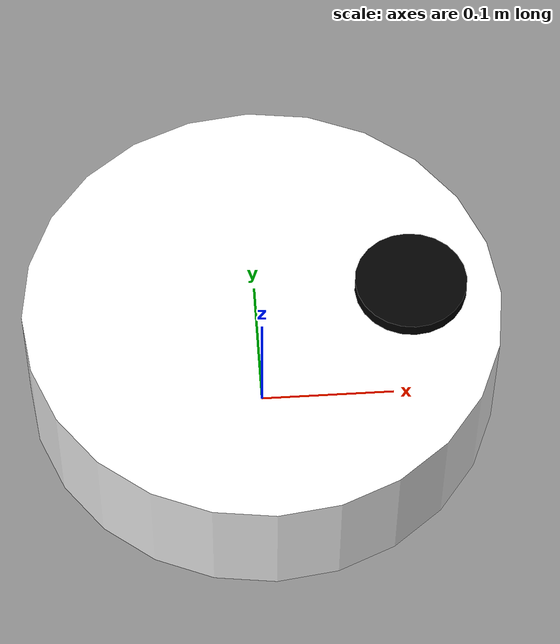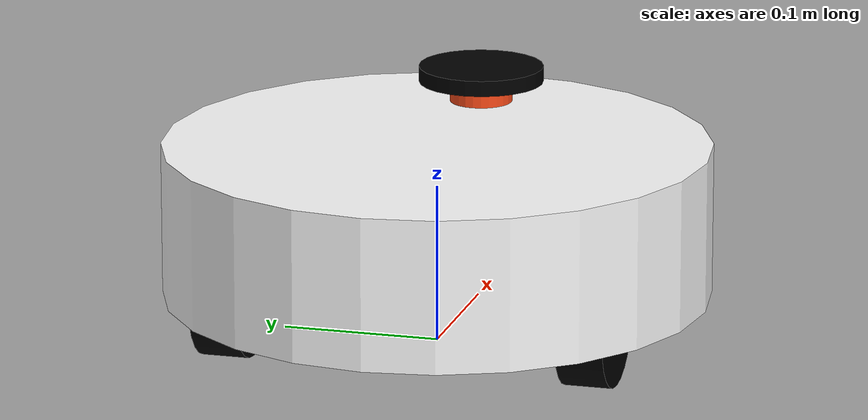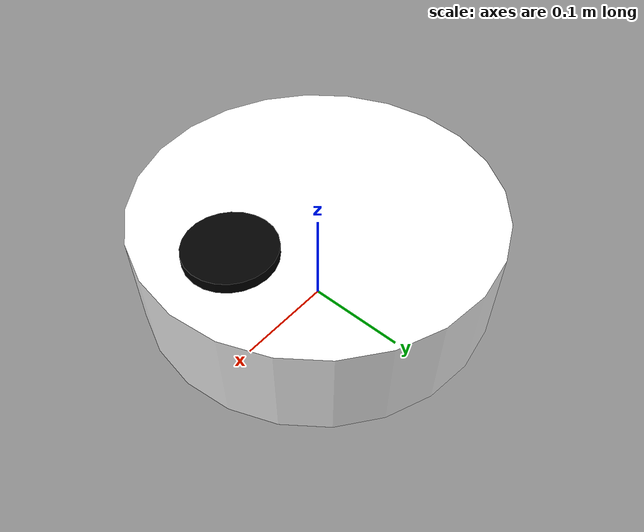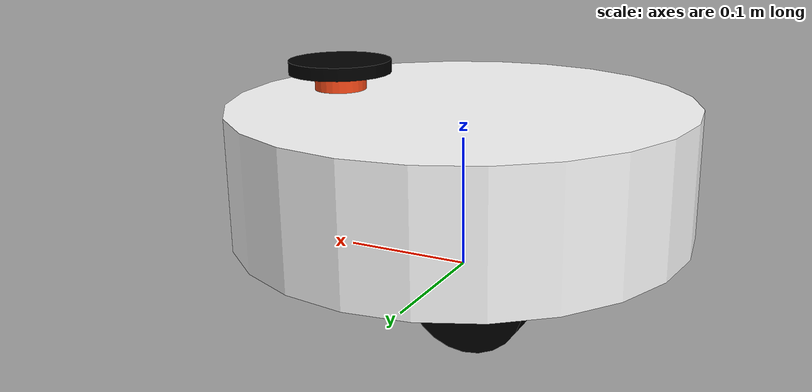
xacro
<?xml version="1.0"?>
<robot xmlns:xacro="http://www.ros.org/wiki/xacro" name="robot">

    <xacro:arg name="use_ros2_control" default="true"/>

    <xacro:include filename="robot_lib.xacro" />
    <xacro:include filename="robot_config.xacro" />
    <xacro:if value="$(arg use_ros2_control)">
        <xacro:include filename="ros2_control.xacro" />
    </xacro:if>
    <xacro:unless value="$(arg use_ros2_control)">
        <xacro:include filename="robot_control.xacro" />
    </xacro:unless>

</robot>

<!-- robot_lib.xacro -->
<robot xmlns:xacro="http://www.ros.org/wiki/xacro">

    <!-- global variable -->
    <xacro:property name="wheel_radius" value="0.04" />
    <xacro:property name="wheel_size" value="0.03" />
    <xacro:property name="main_block_height" value="0.096"/>
    <xacro:property name="main_block_radius" value="0.1725"/>
    <xacro:property name="sensor_height" value="${wheel_size-0.01}"/>
    <xacro:property name="sensor_radius" value="${wheel_radius/2}"/>

    <material name="white">
        <color rgba="1 1 1 1" />

    </material>

    <material name="blue">
        <color rgba="0 0 1 1" />

    </material>

    <material name="black">
        <color rgba="0 0 0 1" />

    </material>

    <material name="orange">
        <color rgba="1 0.3 0.1 1" />

    </material>

    <xacro:macro name="inertial_cylinder" params="mass length radius *origin">
        <inertial>
            <xacro:insert_block name="origin"/>
            <mass value="${mass}" />
            <inertia ixx="${(1/12) * mass * (3*radius*radius + length*length)}" ixy="0.0" ixz="0.0"
                    iyy="${(1/12) * mass * (3*radius*radius + length*length)}" iyz="0.0"
                    izz="${(1/2) * mass * (radius*radius)}" />
        </inertial>
    </xacro:macro>

     <xacro:macro name="inertial_sphere" params="mass radius *origin">
        <inertial>
            <xacro:insert_block name="origin"/>
            <mass value="${mass}" />
            <inertia ixx="${(2/5) * mass * (radius*radius)}" ixy="0.0" ixz="0.0"
                    iyy="${(2/5) * mass * (radius*radius)}" iyz="0.0"
                    izz="${(2/5) * mass * (radius*radius)}" />
        </inertial>
    </xacro:macro>

</robot>

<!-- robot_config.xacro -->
<robot xmlns:xacro="http://www.ros.org/wiki/xacro">

    <!-- Base -->
    <link name="base_link"></link>

    <!-- Base_footprintf_link -->
    <joint name="base_footprint_joint" type="fixed">
        <parent link="base_link" />
        <child link="base_footprint" />
        <origin xyz="0 0 0" rpy="0 0 0" />

    </joint>

    <link name="base_footprint"></link>

     <!--bottom_vaccum-->
    <joint name="bottom_joint" type="fixed">
        <parent link="base_link"/>
        <child link="main_link"/>
        <origin xyz="0 0 ${wheel_radius}"/>
    </joint>

    <link name="main_link">
        <visual>
            <origin xyz="0 0 ${wheel_radius}"/>
            <geometry>
                <cylinder length="${main_block_height}" radius="${main_block_radius}" />
            </geometry>
            <material name="white"/>
        </visual>
        <collision>
            <origin xyz="0 0 ${wheel_radius}"/>
            <geometry>
                <cylinder length="${main_block_height}" radius="${main_block_radius}" />
            </geometry>
        </collision>
        <xacro:inertial_cylinder mass="3.3" length="${main_block_height}" radius="${main_block_radius}">
            <origin xyz="0 0 ${main_block_height/2}"/>
        </xacro:inertial_cylinder>
    </link>

    <gazebo reference="main_link">
        <material>Gazebo/White</material>
    </gazebo>

    <!--wheel_right-->
    <joint name="wheel_right" type="continuous">
        <parent link="main_link"/>
        <child link="wheel_right_link"/>
        <origin xyz="-0.0619  ${main_block_radius/2+0.03} 0" rpy="${pi/2} 0 0"/>
        <axis xyz="0 0 -1" />
    </joint>

    <link name="wheel_right_link">
        <visual>
            <geometry>
                <cylinder length="${wheel_size}" radius="${wheel_radius}"/>
            </geometry>
            <material name="black"/>
        </visual>
        <collision>
            <geometry>
                <cylinder length="${wheel_size}" radius="${wheel_radius}"/>
            </geometry>
        </collision>
        <xacro:inertial_cylinder mass="0.2" length="${wheel_size}" radius="${wheel_radius}">
            <origin xyz="0 0 0"/>
        </xacro:inertial_cylinder>
    </link>

    <gazebo reference="wheel_right_link">
        <material>Gazebo/Black</material>
    </gazebo>

     <!--wheel_left-->
    <joint name="wheel_left" type="continuous">
        <parent link="main_link"/>
        <child link="wheel_left_link"/>
        <origin xyz="-0.0619 -${main_block_radius/2+0.03} 0" rpy="-${pi/2} 0 0"/>
        <axis xyz="0 0 1" />
    </joint>

    <link name="wheel_left_link">
        <visual>
            <geometry>
                <cylinder length="${wheel_size}" radius="${wheel_radius}"/>
            </geometry>
            <material name="black"/>
        </visual>
        <collision>
            <geometry>
                <cylinder length="${wheel_size}" radius="${wheel_radius}"/>
            </geometry>
        </collision>
        <xacro:inertial_cylinder mass="0.2" length="${wheel_size}" radius="${wheel_radius}">
            <origin xyz="0 0 0"/>
        </xacro:inertial_cylinder>
    </link>

    <gazebo reference="wheel_left_link">
        <material>Gazebo/Black</material>
    </gazebo>

    <!-- wheel_direct-->
    <joint name="wheel_direct" type="fixed">
        <parent link="main_link"/>
        <child link="wheel_direct_link"/>
        <origin xyz="${main_block_radius/2 +0.02} 0 0"/>
    </joint>

    <link name="wheel_direct_link">
        <visual>
            <geometry>
                <sphere radius="${wheel_radius}"/>
            </geometry>
            <material name="black"/>
        </visual>
        <collision>
            <geometry>
                <sphere radius="${wheel_radius}"/>
            </geometry>
        </collision>
        <xacro:inertial_sphere mass="0.1" radius="${wheel_radius}">
            <origin xyz="0 0 0"/>
        </xacro:inertial_sphere>
    </link>

    <gazebo reference="wheel_direct_link">
        <material>Gazebo/Black</material>
        <mu1 value="0.001" />
        <mu2 value="0.001" />
    </gazebo>

    <!-- lidar_file -->
    <xacro:include filename="lidar.xacro" />

</robot>

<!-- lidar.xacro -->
<robot xmlns:xacro="http://www.ros.org/wiki/xacro">

    <!-- sensor-->
    <joint name="sensor" type="fixed">
        <parent link="wheel_direct_link"/>
        <child link="sensor_link"/>
        <origin xyz="0 0 ${main_block_height}"/>
    </joint>

    <link name="sensor_link">
        <visual>
            <geometry>
                <cylinder length="${sensor_height}" radius="${sensor_radius}"/>
            </geometry>
            <material name="orange"/>
        </visual>
        <collision>
            <geometry>
                <cylinder length="${sensor_height}" radius="${sensor_radius}"/>
            </geometry>
        </collision>
        <xacro:inertial_cylinder mass="0.05" length="${sensor_height}" radius="${sensor_radius}">
            <origin xyz="0 0 0"/>
        </xacro:inertial_cylinder>
    </link>

     <gazebo reference="sensor_link">
        <material>Gazebo/Orange</material>

        <sensor name="laser" type="ray">
            <pose> 0 0 0 0 0 0 </pose>
            <visualize>true</visualize>
            <update_rate>100</update_rate>
            <ray>
                <scan>
                    <horizontal>
                        <samples>360</samples>
                        <min_angle>-3.14</min_angle>
                        <max_angle>3.14</max_angle>
                    </horizontal>
                </scan>
                <range>
                    <min>0.3</min>
                    <max>20.0</max>
                </range>
            </ray>
            <plugin name="laser_controller" filename="libgazebo_ros_ray_sensor.so">
                <ros>
                    <argument>~/out:=scan</argument>
                </ros>
                <output_type>sensor_msgs/LaserScan</output_type>
                <frame_name>sensor_link</frame_name>
            </plugin>
        </sensor>
    </gazebo>

     <!-- head_sensor-->
    <joint name="head_sensor" type="fixed">
        <parent link="sensor_link"/>
        <child link="head_sensor"/>
        <origin xyz="0 0 ${sensor_height/2}"/>
    </joint>

    <link name="head_sensor">
        <visual>
            <geometry>
                <cylinder length="${sensor_height-0.01}" radius="${sensor_radius+0.02}"/>
            </geometry>
            <material name="black"/>
        </visual>
        <collision>
            <geometry>
                <cylinder length="${sensor_height-0.01}" radius="${sensor_radius+0.02}"/>
            </geometry>
        </collision>
        <xacro:inertial_cylinder mass="0.02" length="${sensor_height-0.2}" radius="${sensor_radius+0.1}">
            <origin xyz="0 0 0"/>
        </xacro:inertial_cylinder>
    </link>

    <gazebo reference="head_sensor">
        <material>Gazebo/Black</material>
    </gazebo>

</robot>
